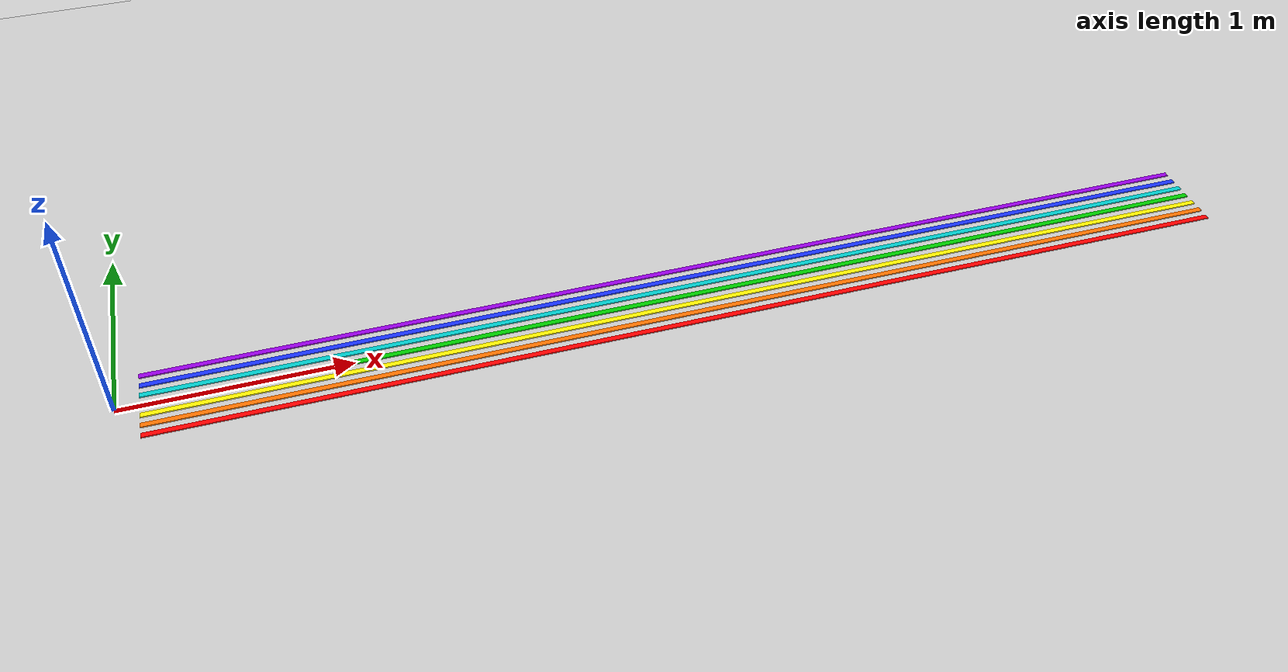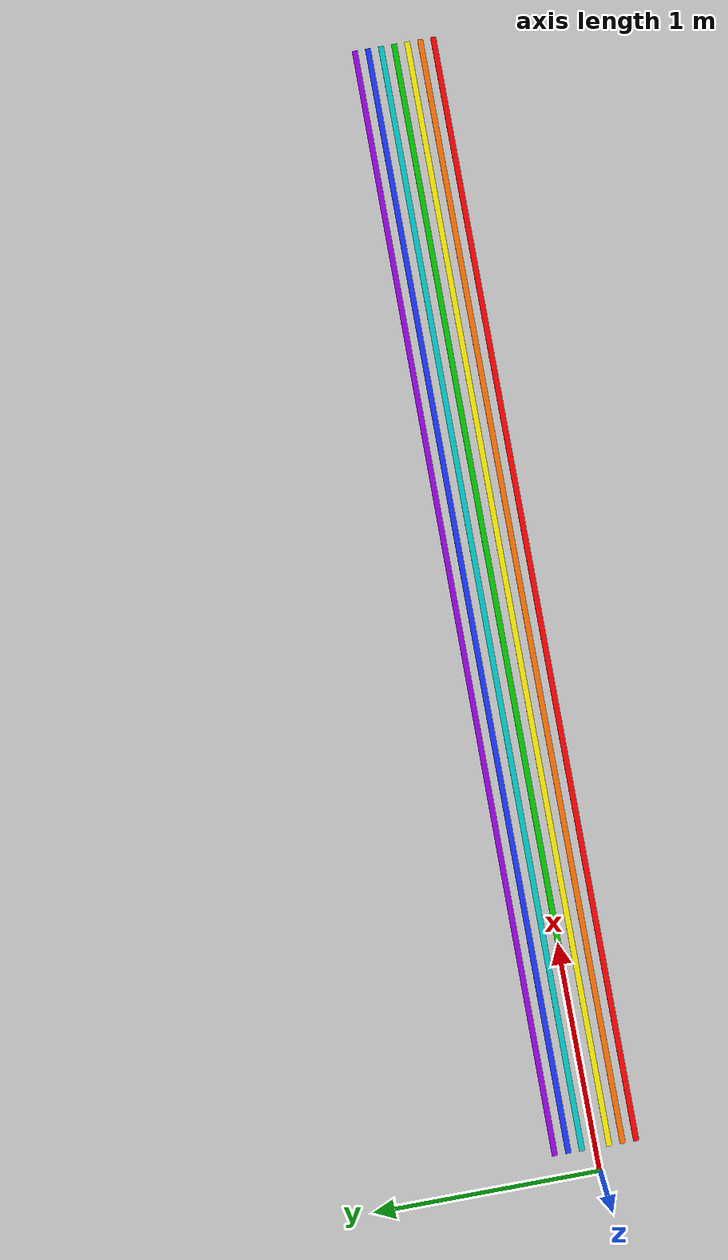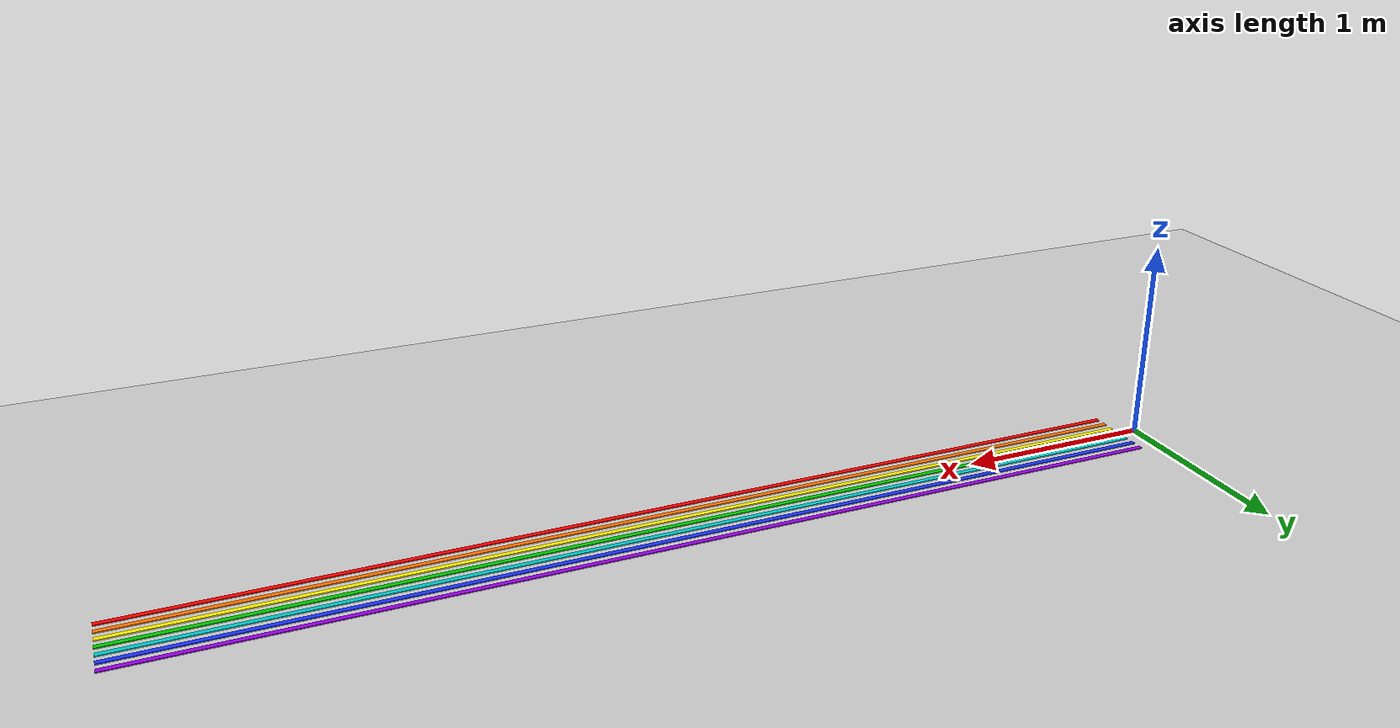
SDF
<?xml version="1.0" ?>
<sdf version="1.6">
  <world name="yahboom_lines">
    <include><uri>model://sun</uri></include>
    <include><uri>model://ground_plane</uri></include>
    <scene><ambient>0.7 0.7 0.7 1</ambient><background>0.7 0.7 0.7 1</background><shadows>false</shadows></scene>
    <model name="line_red">
      <static>true</static>
      <pose>2.6000 -0.1800 0.003 0 0 0</pose>
      <link name="link">
        <visual name="v">
          <geometry><box><size>5.000 0.025 0.006</size></box></geometry>
          <material><ambient>1.0 0.0 0.0 1</ambient><diffuse>1.0 0.0 0.0 1</diffuse></material>
        </visual>
      </link>
    </model>
    <model name="line_orange">
      <static>true</static>
      <pose>2.6000 -0.1200 0.003 0 0 0</pose>
      <link name="link">
        <visual name="v">
          <geometry><box><size>5.000 0.025 0.006</size></box></geometry>
          <material><ambient>1.0 0.45 0.0 1</ambient><diffuse>1.0 0.45 0.0 1</diffuse></material>
        </visual>
      </link>
    </model>
    <model name="line_yellow">
      <static>true</static>
      <pose>2.6000 -0.0600 0.003 0 0 0</pose>
      <link name="link">
        <visual name="v">
          <geometry><box><size>5.000 0.025 0.006</size></box></geometry>
          <material><ambient>1.0 0.95 0.0 1</ambient><diffuse>1.0 0.95 0.0 1</diffuse></material>
        </visual>
      </link>
    </model>
    <model name="line_green">
      <static>true</static>
      <pose>2.6000 0.0000 0.003 0 0 0</pose>
      <link name="link">
        <visual name="v">
          <geometry><box><size>5.000 0.025 0.006</size></box></geometry>
          <material><ambient>0.0 0.8 0.0 1</ambient><diffuse>0.0 0.8 0.0 1</diffuse></material>
        </visual>
      </link>
    </model>
    <model name="line_cyan">
      <static>true</static>
      <pose>2.6000 0.0600 0.003 0 0 0</pose>
      <link name="link">
        <visual name="v">
          <geometry><box><size>5.000 0.025 0.006</size></box></geometry>
          <material><ambient>0.0 0.8 0.8 1</ambient><diffuse>0.0 0.8 0.8 1</diffuse></material>
        </visual>
      </link>
    </model>
    <model name="line_blue">
      <static>true</static>
      <pose>2.6000 0.1200 0.003 0 0 0</pose>
      <link name="link">
        <visual name="v">
          <geometry><box><size>5.000 0.025 0.006</size></box></geometry>
          <material><ambient>0.1 0.2 1.0 1</ambient><diffuse>0.1 0.2 1.0 1</diffuse></material>
        </visual>
      </link>
    </model>
    <model name="line_purple">
      <static>true</static>
      <pose>2.6000 0.1800 0.003 0 0 0</pose>
      <link name="link">
        <visual name="v">
          <geometry><box><size>5.000 0.025 0.006</size></box></geometry>
          <material><ambient>0.6 0.0 0.9 1</ambient><diffuse>0.6 0.0 0.9 1</diffuse></material>
        </visual>
      </link>
    </model>
    <physics name="default_physics" default="true" type="ode">
      <max_step_size>0.001</max_step_size><real_time_factor>1.0</real_time_factor><real_time_update_rate>1000</real_time_update_rate>
    </physics>
  </world>
</sdf>
